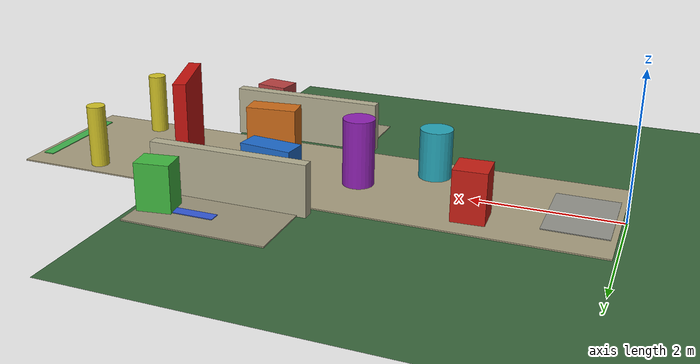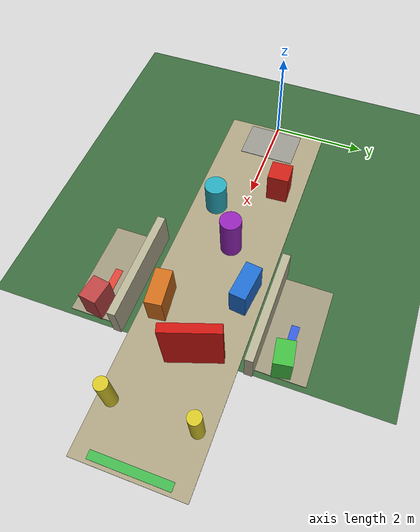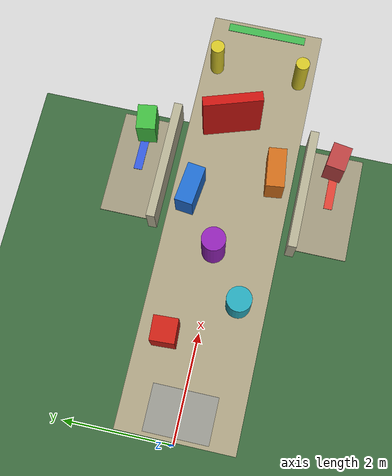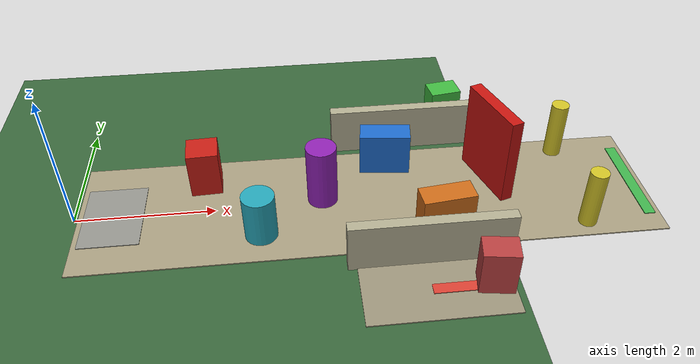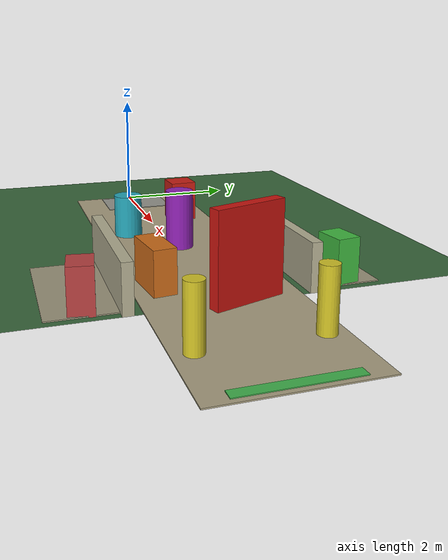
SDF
<?xml version="1.0"?>
<sdf version="1.6">
  <world name="mari_nav2_stage4_repeat_course">
    <gravity>0 0 -9.80665</gravity>

    <spherical_coordinates>
      <heading_deg>180</heading_deg>
    </spherical_coordinates>

    <physics name="default_physics" default="true" type="ode">
      <max_step_size>0.001</max_step_size>
      <real_time_factor>1.0</real_time_factor>
      <real_time_update_rate>1000</real_time_update_rate>
    </physics>

    <scene>
      <ambient>0.60 0.61 0.58 1</ambient>
      <background>0.68 0.80 0.98 1</background>
      <shadows>true</shadows>
    </scene>

    <light name="sun" type="directional">
      <cast_shadows>true</cast_shadows>
      <pose>0 0 12 0 0 0</pose>
      <diffuse>0.95 0.92 0.84 1</diffuse>
      <specular>0.2 0.2 0.18 1</specular>
      <direction>-0.25 0.20 -0.94</direction>
    </light>

    <model name="stage4_ground">
      <static>true</static>
      <link name="link">
        <collision name="ground_collision">
          <geometry><plane><normal>0 0 1</normal><size>12 8</size></plane></geometry>
        </collision>
        <visual name="grass_visual">
          <geometry><plane><normal>0 0 1</normal><size>12 8</size></plane></geometry>
          <material><ambient>0.22 0.40 0.23 1</ambient><diffuse>0.22 0.40 0.23 1</diffuse></material>
        </visual>
      </link>
    </model>

    <model name="stage4_repeat_course_floor">
      <static>true</static>
      <link name="link">
        <visual name="main_test_lane">
          <pose>4.2 0 0.010 0 0 0</pose>
          <geometry><box><size>8.3 2.2 0.018</size></box></geometry>
          <material><ambient>0.66 0.62 0.50 1</ambient><diffuse>0.66 0.62 0.50 1</diffuse></material>
        </visual>
        <visual name="left_side_goal_area">
          <pose>4.9 1.85 0.011 0 0 0</pose>
          <geometry><box><size>2.0 1.0 0.018</size></box></geometry>
          <material><ambient>0.61 0.58 0.48 1</ambient><diffuse>0.61 0.58 0.48 1</diffuse></material>
        </visual>
        <visual name="right_side_goal_area">
          <pose>4.9 -1.85 0.011 0 0 0</pose>
          <geometry><box><size>2.0 1.0 0.018</size></box></geometry>
          <material><ambient>0.61 0.58 0.48 1</ambient><diffuse>0.61 0.58 0.48 1</diffuse></material>
        </visual>
        <visual name="start_pad">
          <pose>0.55 0 0.018 0 0 0</pose>
          <geometry><box><size>0.85 1.20 0.025</size></box></geometry>
          <material><ambient>0.58 0.58 0.55 1</ambient><diffuse>0.58 0.58 0.55 1</diffuse></material>
        </visual>
        <visual name="far_goal_band">
          <pose>8.2 0 0.020 0 0 0</pose>
          <geometry><box><size>0.16 1.55 0.022</size></box></geometry>
          <material><ambient>0.25 0.70 0.30 1</ambient><diffuse>0.25 0.70 0.30 1</diffuse></material>
        </visual>
        <visual name="left_goal_marker">
          <pose>5.2 1.85 0.020 0 0 0</pose>
          <geometry><box><size>0.75 0.16 0.022</size></box></geometry>
          <material><ambient>0.20 0.35 0.85 1</ambient><diffuse>0.20 0.35 0.85 1</diffuse></material>
        </visual>
        <visual name="right_goal_marker">
          <pose>5.2 -1.85 0.020 0 0 0</pose>
          <geometry><box><size>0.75 0.16 0.022</size></box></geometry>
          <material><ambient>0.85 0.25 0.20 1</ambient><diffuse>0.85 0.25 0.20 1</diffuse></material>
        </visual>
      </link>
    </model>

    <model name="stage4_slalom_obstacles">
      <static>true</static>
      <link name="link">
        <collision name="left_box_near_collision">
          <pose>1.85 0.58 0.36 0 0 0.05</pose>
          <geometry><box><size>0.45 0.45 0.72</size></box></geometry>
        </collision>
        <visual name="left_box_near_visual">
          <pose>1.85 0.58 0.36 0 0 0.05</pose>
          <geometry><box><size>0.45 0.45 0.72</size></box></geometry>
          <material><ambient>0.78 0.12 0.08 1</ambient><diffuse>0.78 0.12 0.08 1</diffuse></material>
        </visual>

        <collision name="right_cylinder_near_collision">
          <pose>2.65 -0.58 0.36 0 0 0</pose>
          <geometry><cylinder><radius>0.23</radius><length>0.72</length></cylinder></geometry>
        </collision>
        <visual name="right_cylinder_near_visual">
          <pose>2.65 -0.58 0.36 0 0 0</pose>
          <geometry><cylinder><radius>0.23</radius><length>0.72</length></cylinder></geometry>
          <material><ambient>0.15 0.65 0.72 1</ambient><diffuse>0.15 0.65 0.72 1</diffuse></material>
        </visual>

        <collision name="center_pillar_collision">
          <pose>3.55 0.08 0.48 0 0 0</pose>
          <geometry><cylinder><radius>0.22</radius><length>0.96</length></cylinder></geometry>
        </collision>
        <visual name="center_pillar_visual">
          <pose>3.55 0.08 0.48 0 0 0</pose>
          <geometry><cylinder><radius>0.22</radius><length>0.96</length></cylinder></geometry>
          <material><ambient>0.56 0.13 0.70 1</ambient><diffuse>0.56 0.13 0.70 1</diffuse></material>
        </visual>

        <collision name="left_mid_barrier_collision">
          <pose>4.55 0.74 0.34 0 0 -0.12</pose>
          <geometry><box><size>0.75 0.34 0.68</size></box></geometry>
        </collision>
        <visual name="left_mid_barrier_visual">
          <pose>4.55 0.74 0.34 0 0 -0.12</pose>
          <geometry><box><size>0.75 0.34 0.68</size></box></geometry>
          <material><ambient>0.12 0.42 0.80 1</ambient><diffuse>0.12 0.42 0.80 1</diffuse></material>
        </visual>

        <collision name="right_mid_barrier_collision">
          <pose>5.20 -0.74 0.34 0 0 0.12</pose>
          <geometry><box><size>0.75 0.34 0.68</size></box></geometry>
        </collision>
        <visual name="right_mid_barrier_visual">
          <pose>5.20 -0.74 0.34 0 0 0.12</pose>
          <geometry><box><size>0.75 0.34 0.68</size></box></geometry>
          <material><ambient>0.80 0.42 0.10 1</ambient><diffuse>0.80 0.42 0.10 1</diffuse></material>
        </visual>

        <collision name="angled_panel_collision">
          <pose>6.05 0.28 0.68 0 0 0.32</pose>
          <geometry><box><size>0.18 1.10 1.36</size></box></geometry>
        </collision>
        <visual name="angled_panel_visual">
          <pose>6.05 0.28 0.68 0 0 0.32</pose>
          <geometry><box><size>0.18 1.10 1.36</size></box></geometry>
          <material><ambient>0.78 0.08 0.06 1</ambient><diffuse>0.78 0.08 0.06 1</diffuse></material>
        </visual>

        <collision name="gate_left_post_collision">
          <pose>7.25 0.82 0.45 0 0 0</pose>
          <geometry><cylinder><radius>0.13</radius><length>0.90</length></cylinder></geometry>
        </collision>
        <visual name="gate_left_post_visual">
          <pose>7.25 0.82 0.45 0 0 0</pose>
          <geometry><cylinder><radius>0.13</radius><length>0.90</length></cylinder></geometry>
          <material><ambient>0.82 0.76 0.15 1</ambient><diffuse>0.82 0.76 0.15 1</diffuse></material>
        </visual>

        <collision name="gate_right_post_collision">
          <pose>7.25 -0.82 0.45 0 0 0</pose>
          <geometry><cylinder><radius>0.13</radius><length>0.90</length></cylinder></geometry>
        </collision>
        <visual name="gate_right_post_visual">
          <pose>7.25 -0.82 0.45 0 0 0</pose>
          <geometry><cylinder><radius>0.13</radius><length>0.90</length></cylinder></geometry>
          <material><ambient>0.82 0.76 0.15 1</ambient><diffuse>0.82 0.76 0.15 1</diffuse></material>
        </visual>
      </link>
    </model>

    <model name="stage4_side_clearance_tests">
      <static>true</static>
      <link name="link">
        <collision name="left_side_wall_collision">
          <pose>4.9 1.30 0.36 0 0 0</pose>
          <geometry><box><size>2.25 0.16 0.72</size></box></geometry>
        </collision>
        <visual name="left_side_wall_visual">
          <pose>4.9 1.30 0.36 0 0 0</pose>
          <geometry><box><size>2.25 0.16 0.72</size></box></geometry>
          <material><ambient>0.70 0.68 0.57 1</ambient><diffuse>0.70 0.68 0.57 1</diffuse></material>
        </visual>

        <collision name="right_side_wall_collision">
          <pose>4.9 -1.30 0.36 0 0 0</pose>
          <geometry><box><size>2.25 0.16 0.72</size></box></geometry>
        </collision>
        <visual name="right_side_wall_visual">
          <pose>4.9 -1.30 0.36 0 0 0</pose>
          <geometry><box><size>2.25 0.16 0.72</size></box></geometry>
          <material><ambient>0.70 0.68 0.57 1</ambient><diffuse>0.70 0.68 0.57 1</diffuse></material>
        </visual>

        <collision name="left_goal_block_collision">
          <pose>5.65 1.83 0.34 0 0 0.15</pose>
          <geometry><box><size>0.48 0.36 0.68</size></box></geometry>
        </collision>
        <visual name="left_goal_block_visual">
          <pose>5.65 1.83 0.34 0 0 0.15</pose>
          <geometry><box><size>0.48 0.36 0.68</size></box></geometry>
          <material><ambient>0.25 0.72 0.25 1</ambient><diffuse>0.25 0.72 0.25 1</diffuse></material>
        </visual>

        <collision name="right_goal_block_collision">
          <pose>5.65 -1.83 0.34 0 0 -0.15</pose>
          <geometry><box><size>0.48 0.36 0.68</size></box></geometry>
        </collision>
        <visual name="right_goal_block_visual">
          <pose>5.65 -1.83 0.34 0 0 -0.15</pose>
          <geometry><box><size>0.48 0.36 0.68</size></box></geometry>
          <material><ambient>0.72 0.25 0.25 1</ambient><diffuse>0.72 0.25 0.25 1</diffuse></material>
        </visual>
      </link>
    </model>
  </world>
</sdf>
